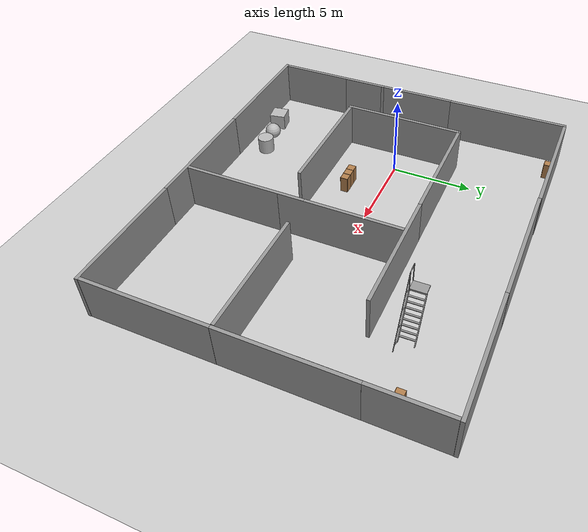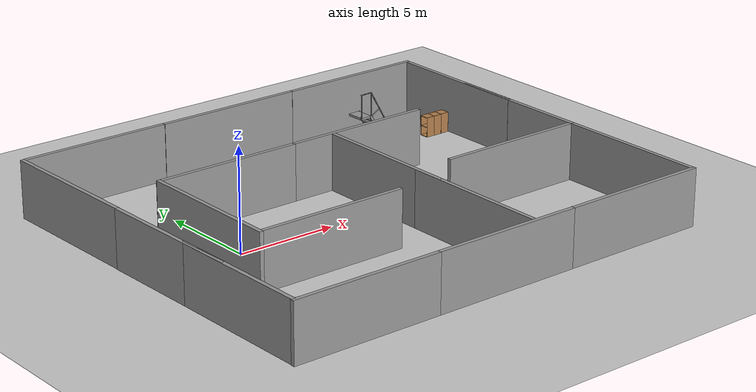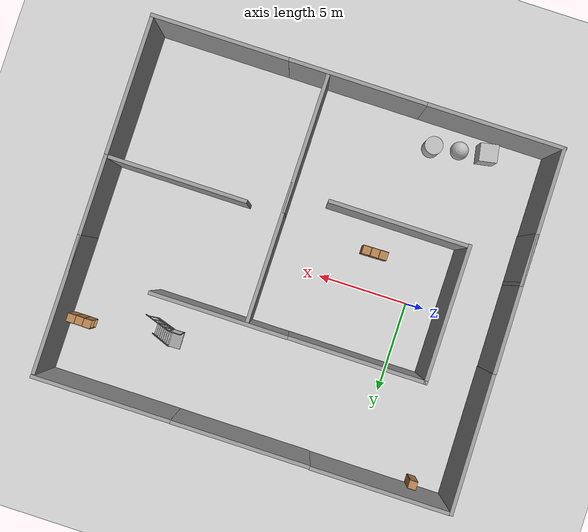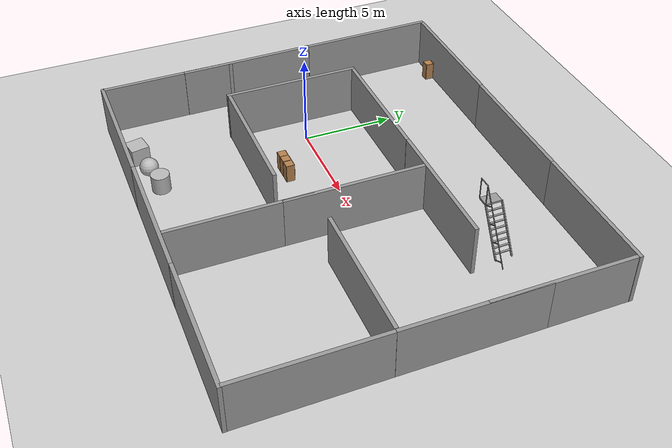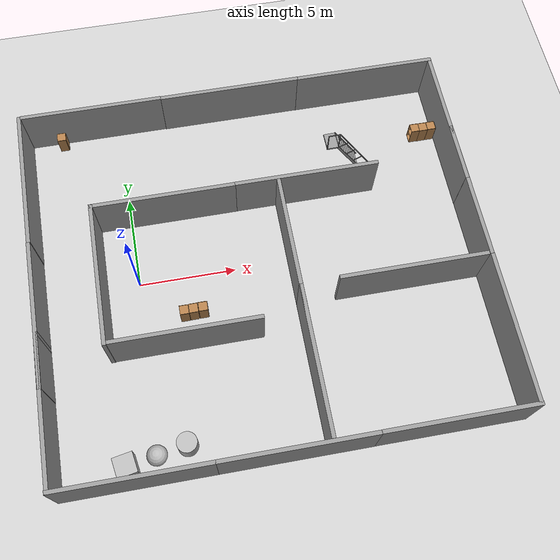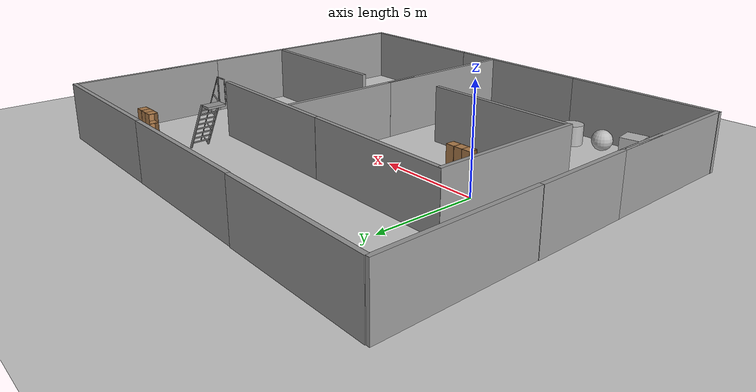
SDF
<sdf version="1.7">
 <world name="default">
  <light name="sun" type="directional">
   <pose>0 0 10 0 -0 0</pose>
   <diffuse>0.8 0.8 0.8 1</diffuse>
   <specular>0.2 0.2 0.2 1</specular>
   <attenuation>
    <range>1000</range>
    <constant>0.9</constant>
    <linear>0.01</linear>
    <quadratic>0.001</quadratic>
   </attenuation>
   <direction>-0.5 0.1 -0.9</direction>
   <spot><inner_angle>0</inner_angle><outer_angle>0</outer_angle><falloff>0</falloff></spot>
  </light>
  <model name="ground_plane">
   <static>1</static>
   <link name="link">
    <collision name="collision">
     <geometry><plane><normal>0 0 1</normal><size>100 100</size></plane></geometry>
     <surface><friction><ode><mu>100</mu><mu2>50</mu2></ode></friction></surface>
    </collision>
    <visual name="visual">
     <cast_shadows>0</cast_shadows>
     <geometry><plane><normal>0 0 1</normal><size>100 100</size></plane></geometry>
     <material>
      <script><uri>file://media/materials/scripts/gazebo.material</uri><name>Gazebo/Grey</name></script>
     </material>
    </visual>
   </link>
  </model>
  <gravity>0 0 -9.8</gravity>
  <magnetic_field>6e-06 2.3e-05 -4.2e-05</magnetic_field>
  <atmosphere type="adiabatic"/>
  <physics type="ode">
   <max_step_size>0.001</max_step_size>
   <real_time_factor>1</real_time_factor>
   <real_time_update_rate>1000</real_time_update_rate>
  </physics>
  <scene><ambient>0.4 0.4 0.4 1</ambient><background>0.7 0.7 0.7 1</background><shadows>1</shadows></scene>
  <spherical_coordinates>
   <surface_model>EARTH_WGS84</surface_model>
   <latitude_deg>0</latitude_deg>
   <longitude_deg>0</longitude_deg>
   <elevation>0</elevation>
   <heading_deg>0</heading_deg>
  </spherical_coordinates>
  <model name="grey_wall">
   <static>1</static>
   <link name="link">
    <pose>0 0 1.4 0 -0 0</pose>
    <collision name="collision"><geometry><box><size>7.5 0.2 2.8</size></box></geometry></collision>
    <visual name="visual">
     <cast_shadows>0</cast_shadows>
     <geometry><box><size>7.5 0.2 2.8</size></box></geometry>
     <material>
      <script>
       <uri>model://grey_wall/materials/scripts</uri>
       <uri>model://grey_wall/materials/textures</uri>
       <name>vrc/grey_wall</name>
      </script>
     </material>
    </visual>
   </link>
   <pose>6.2728 -10.0751 0 0 -0 0</pose>
  </model>
  <model name="grey_wall_clone">
   <static>1</static>
   <link name="link">
    <pose>0 0 1.4 0 -0 0</pose>
    <collision name="collision"><geometry><box><size>7.5 0.2 2.8</size></box></geometry></collision>
    <visual name="visual">
     <cast_shadows>0</cast_shadows>
     <geometry><box><size>7.5 0.2 2.8</size></box></geometry>
     <material>
      <script>
       <uri>model://grey_wall/materials/scripts</uri>
       <uri>model://grey_wall/materials/textures</uri>
       <name>vrc/grey_wall</name>
      </script>
     </material>
    </visual>
   </link>
   <pose>-1.19798 -10.0759 0 0 -0 0</pose>
  </model>
  <model name="grey_wall_clone_clone">
   <static>1</static>
   <link name="link">
    <pose>0 0 1.4 0 -0 0</pose>
    <collision name="collision"><geometry><box><size>7.5 0.2 2.8</size></box></geometry></collision>
    <visual name="visual">
     <cast_shadows>0</cast_shadows>
     <geometry><box><size>7.5 0.2 2.8</size></box></geometry>
     <material>
      <script>
       <uri>model://grey_wall/materials/scripts</uri>
       <uri>model://grey_wall/materials/textures</uri>
       <name>vrc/grey_wall</name>
      </script>
     </material>
    </visual>
   </link>
   <pose>13.7561 -10.0711 0 0 -0 0</pose>
  </model>
  <model name="grey_wall_clone_clone_clone_0">
   <static>1</static>
   <link name="link">
    <pose>0 0 1.4 0 -0 0</pose>
    <collision name="collision"><geometry><box><size>7.5 0.2 2.8</size></box></geometry></collision>
    <visual name="visual">
     <cast_shadows>0</cast_shadows>
     <geometry><box><size>7.5 0.2 2.8</size></box></geometry>
     <material>
      <script>
       <uri>model://grey_wall/materials/scripts</uri>
       <uri>model://grey_wall/materials/textures</uri>
       <name>vrc/grey_wall</name>
      </script>
     </material>
    </visual>
   </link>
   <pose>6.30407 9.42417 0 0 -0 0</pose>
  </model>
  <model name="grey_wall_clone_clone_clone_1">
   <static>1</static>
   <link name="link">
    <pose>0 0 1.4 0 -0 0</pose>
    <collision name="collision"><geometry><box><size>7.5 0.2 2.8</size></box></geometry></collision>
    <visual name="visual">
     <cast_shadows>0</cast_shadows>
     <geometry><box><size>7.5 0.2 2.8</size></box></geometry>
     <material>
      <script>
       <uri>model://grey_wall/materials/scripts</uri>
       <uri>model://grey_wall/materials/textures</uri>
       <name>vrc/grey_wall</name>
      </script>
     </material>
    </visual>
   </link>
   <pose>13.7729 9.41726 0 0 -0 0</pose>
  </model>
  <model name="grey_wall_clone_clone_clone_2">
   <static>1</static>
   <link name="link">
    <pose>0 0 1.4 0 -0 0</pose>
    <collision name="collision"><geometry><box><size>7.5 0.2 2.8</size></box></geometry></collision>
    <visual name="visual">
     <cast_shadows>0</cast_shadows>
     <geometry><box><size>7.5 0.2 2.8</size></box></geometry>
     <material>
      <script>
       <uri>model://grey_wall/materials/scripts</uri>
       <uri>model://grey_wall/materials/textures</uri>
       <name>vrc/grey_wall</name>
      </script>
     </material>
    </visual>
   </link>
   <pose>17.4003 -6.2743 0 0 0 -1.57221</pose>
  </model>
  <model name="grey_wall_clone_clone_clone_2_clone">
   <static>1</static>
   <link name="link">
    <pose>0 0 1.4 0 -0 0</pose>
    <collision name="collision"><geometry><box><size>7.5 0.2 2.8</size></box></geometry></collision>
    <visual name="visual">
     <cast_shadows>0</cast_shadows>
     <geometry><box><size>7.5 0.2 2.8</size></box></geometry>
     <material>
      <script>
       <uri>model://grey_wall/materials/scripts</uri>
       <uri>model://grey_wall/materials/textures</uri>
       <name>vrc/grey_wall</name>
      </script>
     </material>
    </visual>
   </link>
   <pose>17.4082 1.23217 0 0 0 -1.57221</pose>
  </model>
  <model name="grey_wall_clone_clone_clone_2_clone_clone_0">
   <static>1</static>
   <link name="link">
    <pose>0 0 1.4 0 -0 0</pose>
    <collision name="collision"><geometry><box><size>7.5 0.2 2.8</size></box></geometry></collision>
    <visual name="visual">
     <cast_shadows>0</cast_shadows>
     <geometry><box><size>7.5 0.2 2.8</size></box></geometry>
     <material>
      <script>
       <uri>model://grey_wall/materials/scripts</uri>
       <uri>model://grey_wall/materials/textures</uri>
       <name>vrc/grey_wall</name>
      </script>
     </material>
    </visual>
   </link>
   <pose>17.4091 5.55321 0 0 0 -1.57221</pose>
  </model>
  <model name="grey_wall_clone_clone_clone_2_clone_clone_1">
   <static>1</static>
   <link name="link">
    <pose>0 0 1.4 0 -0 0</pose>
    <collision name="collision"><geometry><box><size>7.5 0.2 2.8</size></box></geometry></collision>
    <visual name="visual">
     <cast_shadows>0</cast_shadows>
     <geometry><box><size>7.5 0.2 2.8</size></box></geometry>
     <material>
      <script>
       <uri>model://grey_wall/materials/scripts</uri>
       <uri>model://grey_wall/materials/textures</uri>
       <name>vrc/grey_wall</name>
      </script>
     </material>
    </visual>
   </link>
   <pose>-4.84946 -6.41877 0 0 0 -1.56398</pose>
  </model>
  <model name="grey_wall_clone_clone_clone_0_clone">
   <static>1</static>
   <link name="link">
    <pose>0 0 1.4 0 -0 0</pose>
    <collision name="collision"><geometry><box><size>7.5 0.2 2.8</size></box></geometry></collision>
    <visual name="visual">
     <cast_shadows>0</cast_shadows>
     <geometry><box><size>7.5 0.2 2.8</size></box></geometry>
     <material>
      <script>
       <uri>model://grey_wall/materials/scripts</uri>
       <uri>model://grey_wall/materials/textures</uri>
       <name>vrc/grey_wall</name>
      </script>
     </material>
    </visual>
   </link>
   <pose>-1.1963 9.44838 0 0 -0 0</pose>
  </model>
  <model name="grey_wall_clone_clone_clone_0_clone_0">
   <static>1</static>
   <link name="link">
    <pose>0 0 1.4 0 -0 0</pose>
    <collision name="collision"><geometry><box><size>7.5 0.2 2.8</size></box></geometry></collision>
    <visual name="visual">
     <cast_shadows>0</cast_shadows>
     <geometry><box><size>7.5 0.2 2.8</size></box></geometry>
     <material>
      <script>
       <uri>model://grey_wall/materials/scripts</uri>
       <uri>model://grey_wall/materials/textures</uri>
       <name>vrc/grey_wall</name>
      </script>
     </material>
    </visual>
   </link>
   <pose>1.90496 3.50944 0 0 -0 0</pose>
  </model>
  <model name="grey_wall_clone_clone_clone_1_clone">
   <static>1</static>
   <link name="link">
    <pose>0 0 1.4 0 -0 0</pose>
    <collision name="collision"><geometry><box><size>7.5 0.2 2.8</size></box></geometry></collision>
    <visual name="visual">
     <cast_shadows>0</cast_shadows>
     <geometry><box><size>7.5 0.2 2.8</size></box></geometry>
     <material>
      <script>
       <uri>model://grey_wall/materials/scripts</uri>
       <uri>model://grey_wall/materials/textures</uri>
       <name>vrc/grey_wall</name>
      </script>
     </material>
    </visual>
   </link>
   <pose>13.5345 -2.44991 0 0 -0 0</pose>
  </model>
  <model name="grey_wall_clone_clone_clone_2_clone_clone_2_clone">
   <static>1</static>
   <link name="link">
    <pose>0 0 1.4 0 -0 0</pose>
    <collision name="collision"><geometry><box><size>7.5 0.2 2.8</size></box></geometry></collision>
    <visual name="visual">
     <cast_shadows>0</cast_shadows>
     <geometry><box><size>7.5 0.2 2.8</size></box></geometry>
     <material>
      <script>
       <uri>model://grey_wall/materials/scripts</uri>
       <uri>model://grey_wall/materials/textures</uri>
       <name>vrc/grey_wall</name>
      </script>
     </material>
    </visual>
   </link>
   <pose>7.86868 -0.336203 0 0 0 -1.57221</pose>
  </model>
  <model name="grey_wall_clone_clone_clone_2_clone_clone_2_clone_clone_clone_0">
   <static>1</static>
   <link name="link">
    <pose>0 0 1.4 0 -0 0</pose>
    <collision name="collision"><geometry><box><size>7.5 0.2 2.8</size></box></geometry></collision>
    <visual name="visual">
     <cast_shadows>0</cast_shadows>
     <geometry><box><size>7.5 0.2 2.8</size></box></geometry>
     <material>
      <script>
       <uri>model://grey_wall/materials/scripts</uri>
       <uri>model://grey_wall/materials/textures</uri>
       <name>vrc/grey_wall</name>
      </script>
     </material>
    </visual>
   </link>
   <pose>7.85938 -6.22052 0 0 0 -1.57221</pose>
  </model>
  <model name="grey_wall_clone_clone_clone_2_clone_clone_2_clone_clone_0">
   <static>1</static>
   <link name="link">
    <pose>0 0 1.4 0 -0 0</pose>
    <collision name="collision"><geometry><box><size>7.5 0.2 2.8</size></box></geometry></collision>
    <visual name="visual">
     <cast_shadows>0</cast_shadows>
     <geometry><box><size>7.5 0.2 2.8</size></box></geometry>
     <material>
      <script>
       <uri>model://grey_wall/materials/scripts</uri>
       <uri>model://grey_wall/materials/textures</uri>
       <name>vrc/grey_wall</name>
      </script>
     </material>
    </visual>
   </link>
   <pose>-1.7515 -0.157354 0 0 0 -1.57221</pose>
  </model>
  <model name="grey_wall_clone_0_clone">
   <static>1</static>
   <link name="link">
    <pose>0 0 1.4 0 -0 0</pose>
    <collision name="collision"><geometry><box><size>7.5 0.2 2.8</size></box></geometry></collision>
    <visual name="visual">
     <cast_shadows>0</cast_shadows>
     <geometry><box><size>7.5 0.2 2.8</size></box></geometry>
     <material>
      <script>
       <uri>model://grey_wall/materials/scripts</uri>
       <uri>model://grey_wall/materials/textures</uri>
       <name>vrc/grey_wall</name>
      </script>
     </material>
    </visual>
   </link>
   <pose>2.08917 -3.78651 0 0 -0 0</pose>
  </model>
  <model name="grey_wall_clone_clone_clone_2_clone_clone_1_clone">
   <static>1</static>
   <link name="link">
    <pose>0 0 1.4 0 -0 0</pose>
    <collision name="collision"><geometry><box><size>7.5 0.2 2.8</size></box></geometry></collision>
    <visual name="visual">
     <cast_shadows>0</cast_shadows>
     <geometry><box><size>7.5 0.2 2.8</size></box></geometry>
     <material>
      <script>
       <uri>model://grey_wall/materials/scripts</uri>
       <uri>model://grey_wall/materials/textures</uri>
       <name>vrc/grey_wall</name>
      </script>
     </material>
    </visual>
   </link>
   <pose>-4.88901 -1.72271 0 0 0 -1.55743</pose>
  </model>
  <model name="grey_wall_clone_clone_clone_2_clone_clone_1_clone_clone">
   <static>1</static>
   <link name="link">
    <pose>0 0 1.4 0 -0 0</pose>
    <collision name="collision"><geometry><box><size>7.5 0.2 2.8</size></box></geometry></collision>
    <visual name="visual">
     <cast_shadows>0</cast_shadows>
     <geometry><box><size>7.5 0.2 2.8</size></box></geometry>
     <material>
      <script>
       <uri>model://grey_wall/materials/scripts</uri>
       <uri>model://grey_wall/materials/textures</uri>
       <name>vrc/grey_wall</name>
      </script>
     </material>
    </visual>
   </link>
   <pose>-4.96975 5.76738 0 0 0 -1.5576</pose>
  </model>
  <model name="grey_wall_clone_clone_clone_0_clone_0_clone">
   <static>1</static>
   <link name="link">
    <pose>0 0 1.4 0 -0 0</pose>
    <collision name="collision"><geometry><box><size>7.5 0.2 2.8</size></box></geometry></collision>
    <visual name="visual">
     <cast_shadows>0</cast_shadows>
     <geometry><box><size>7.5 0.2 2.8</size></box></geometry>
     <material>
      <script>
       <uri>model://grey_wall/materials/scripts</uri>
       <uri>model://grey_wall/materials/textures</uri>
       <name>vrc/grey_wall</name>
      </script>
     </material>
    </visual>
   </link>
   <pose>9.37636 3.51744 0 0 -0 0</pose>
  </model>
  <model name="cabinet">
   <static>1</static>
   <link name="cabinet_bottom_plate">
    <inertial>
     <pose>0 0 -1 0 -0 0</pose>
     <inertia><ixx>2.05</ixx><ixy>0</ixy><ixz>0</ixz><iyy>2.05</iyy><iyz>0</iyz><izz>2.05</izz></inertia>
     <mass>25</mass>
    </inertial>
    <collision name="cabinet_bottom_plate_geom">
     <pose>0 0 0.01 0 -0 0</pose>
     <geometry><box><size>0.45 0.45 0.02</size></box></geometry>
    </collision>
    <visual name="cabinet_bottom_plate_geom_visual">
     <pose>0 0 0.01 0 -0 0</pose>
     <geometry><box><size>0.45 0.45 0.02</size></box></geometry>
     <material>
      <script><uri>file://media/materials/scripts/gazebo.material</uri><name>Gazebo/Wood</name></script>
     </material>
    </visual>
    <collision name="cabinet_bottom_plate_geom_cabinet_back_plate">
     <pose>0.235 0 0.51 0 -0 0</pose>
     <geometry><box><size>0.02 0.45 1.02</size></box></geometry>
    </collision>
    <visual name="cabinet_bottom_plate_geom_cabinet_back_plate_visual">
     <pose>0.235 0 0.51 0 -0 0</pose>
     <geometry><box><size>0.02 0.45 1.02</size></box></geometry>
     <material>
      <script><uri>file://media/materials/scripts/gazebo.material</uri><name>Gazebo/Wood</name></script>
     </material>
    </visual>
    <collision name="cabinet_bottom_plate_geom_cabinet_left_plate">
     <pose>0 0.235 0.51 0 -0 0</pose>
     <geometry><box><size>0.45 0.02 1.02</size></box></geometry>
    </collision>
    <visual name="cabinet_bottom_plate_geom_cabinet_left_plate_visual">
     <pose>0 0.235 0.51 0 -0 0</pose>
     <geometry><box><size>0.45 0.02 1.02</size></box></geometry>
     <material>
      <script><uri>file://media/materials/scripts/gazebo.material</uri><name>Gazebo/Wood</name></script>
     </material>
    </visual>
    <collision name="cabinet_bottom_plate_geom_cabinet_middle_plate">
     <pose>0 0 0.51 0 -0 0</pose>
     <geometry><box><size>0.45 0.45 0.02</size></box></geometry>
    </collision>
    <visual name="cabinet_bottom_plate_geom_cabinet_middle_plate_visual">
     <pose>0 0 0.51 0 -0 0</pose>
     <geometry><box><size>0.45 0.45 0.02</size></box></geometry>
     <material>
      <script><uri>file://media/materials/scripts/gazebo.material</uri><name>Gazebo/Wood</name></script>
     </material>
    </visual>
    <collision name="cabinet_bottom_plate_geom_cabinet_right_plate">
     <pose>0 -0.235 0.51 0 -0 0</pose>
     <geometry><box><size>0.45 0.02 1.02</size></box></geometry>
    </collision>
    <visual name="cabinet_bottom_plate_geom_cabinet_right_plate_visual">
     <pose>0 -0.235 0.51 0 -0 0</pose>
     <geometry><box><size>0.45 0.02 1.02</size></box></geometry>
     <material>
      <script><uri>file://media/materials/scripts/gazebo.material</uri><name>Gazebo/Wood</name></script>
     </material>
    </visual>
    <collision name="cabinet_bottom_plate_geom_cabinet_top_plate">
     <pose>0 0 1.01 0 -0 0</pose>
     <geometry><box><size>0.45 0.45 0.02</size></box></geometry>
    </collision>
    <visual name="cabinet_bottom_plate_geom_cabinet_top_plate_visual">
     <pose>0 0 1.01 0 -0 0</pose>
     <geometry><box><size>0.45 0.45 0.02</size></box></geometry>
     <material>
      <script><uri>file://media/materials/scripts/gazebo.material</uri><name>Gazebo/Wood</name></script>
     </material>
    </visual>
   </link>
   <pose>3.0379 -2.10061 0 0 -0 0</pose>
  </model>
  <model name="cabinet_0">
   <static>1</static>
   <link name="cabinet_bottom_plate">
    <inertial>
     <pose>0 0 -1 0 -0 0</pose>
     <inertia><ixx>2.05</ixx><ixy>0</ixy><ixz>0</ixz><iyy>2.05</iyy><iyz>0</iyz><izz>2.05</izz></inertia>
     <mass>25</mass>
    </inertial>
    <collision name="cabinet_bottom_plate_geom">
     <pose>0 0 0.01 0 -0 0</pose>
     <geometry><box><size>0.45 0.45 0.02</size></box></geometry>
    </collision>
    <visual name="cabinet_bottom_plate_geom_visual">
     <pose>0 0 0.01 0 -0 0</pose>
     <geometry><box><size>0.45 0.45 0.02</size></box></geometry>
     <material>
      <script><uri>file://media/materials/scripts/gazebo.material</uri><name>Gazebo/Wood</name></script>
     </material>
    </visual>
    <collision name="cabinet_bottom_plate_geom_cabinet_back_plate">
     <pose>0.235 0 0.51 0 -0 0</pose>
     <geometry><box><size>0.02 0.45 1.02</size></box></geometry>
    </collision>
    <visual name="cabinet_bottom_plate_geom_cabinet_back_plate_visual">
     <pose>0.235 0 0.51 0 -0 0</pose>
     <geometry><box><size>0.02 0.45 1.02</size></box></geometry>
     <material>
      <script><uri>file://media/materials/scripts/gazebo.material</uri><name>Gazebo/Wood</name></script>
     </material>
    </visual>
    <collision name="cabinet_bottom_plate_geom_cabinet_left_plate">
     <pose>0 0.235 0.51 0 -0 0</pose>
     <geometry><box><size>0.45 0.02 1.02</size></box></geometry>
    </collision>
    <visual name="cabinet_bottom_plate_geom_cabinet_left_plate_visual">
     <pose>0 0.235 0.51 0 -0 0</pose>
     <geometry><box><size>0.45 0.02 1.02</size></box></geometry>
     <material>
      <script><uri>file://media/materials/scripts/gazebo.material</uri><name>Gazebo/Wood</name></script>
     </material>
    </visual>
    <collision name="cabinet_bottom_plate_geom_cabinet_middle_plate">
     <pose>0 0 0.51 0 -0 0</pose>
     <geometry><box><size>0.45 0.45 0.02</size></box></geometry>
    </collision>
    <visual name="cabinet_bottom_plate_geom_cabinet_middle_plate_visual">
     <pose>0 0 0.51 0 -0 0</pose>
     <geometry><box><size>0.45 0.45 0.02</size></box></geometry>
     <material>
      <script><uri>file://media/materials/scripts/gazebo.material</uri><name>Gazebo/Wood</name></script>
     </material>
    </visual>
    <collision name="cabinet_bottom_plate_geom_cabinet_right_plate">
     <pose>0 -0.235 0.51 0 -0 0</pose>
     <geometry><box><size>0.45 0.02 1.02</size></box></geometry>
    </collision>
    <visual name="cabinet_bottom_plate_geom_cabinet_right_plate_visual">
     <pose>0 -0.235 0.51 0 -0 0</pose>
     <geometry><box><size>0.45 0.02 1.02</size></box></geometry>
     <material>
      <script><uri>file://media/materials/scripts/gazebo.material</uri><name>Gazebo/Wood</name></script>
     </material>
    </visual>
    <collision name="cabinet_bottom_plate_geom_cabinet_top_plate">
     <pose>0 0 1.01 0 -0 0</pose>
     <geometry><box><size>0.45 0.45 0.02</size></box></geometry>
    </collision>
    <visual name="cabinet_bottom_plate_geom_cabinet_top_plate_visual">
     <pose>0 0 1.01 0 -0 0</pose>
     <geometry><box><size>0.45 0.45 0.02</size></box></geometry>
     <material>
      <script><uri>file://media/materials/scripts/gazebo.material</uri><name>Gazebo/Wood</name></script>
     </material>
    </visual>
   </link>
   <pose>2.55586 -2.1092 0 0 -0 0</pose>
  </model>
  <model name="ladder_60deg_1rails">
   <static>1</static>
   <link name="step0">
    <pose>0 0.15396 0.266667 0 -0 0</pose>
    <inertial>
     <mass>9.75482</mass>
     <inertia>
      <ixx>0.00957124</ixx>
      <iyy>0.65963</iyy>
      <izz>0.666842</izz>
      <ixy>0</ixy>
      <ixz>0</ixz>
      <iyz>0</iyz>
     </inertia>
    </inertial>
    <collision name="collision"><geometry><box><size>0.9 0.1016 0.0381</size></box></geometry></collision>
    <visual name="visual">
     <geometry><box><size>0.9 0.1016 0.0381</size></box></geometry>
     <material>
      <script><uri>file://media/materials/scripts/gazebo.material</uri><name>Gazebo/Grey</name></script>
     </material>
    </visual>
   </link>
   <link name="step1">
    <pose>0 0.30792 0.533333 0 -0 0</pose>
    <inertial>
     <mass>9.75482</mass>
     <inertia>
      <ixx>0.00957124</ixx>
      <iyy>0.65963</iyy>
      <izz>0.666842</izz>
      <ixy>0</ixy>
      <ixz>0</ixz>
      <iyz>0</iyz>
     </inertia>
    </inertial>
    <collision name="collision"><geometry><box><size>0.9 0.1016 0.0381</size></box></geometry></collision>
    <visual name="visual">
     <geometry><box><size>0.9 0.1016 0.0381</size></box></geometry>
     <material>
      <script><uri>file://media/materials/scripts/gazebo.material</uri><name>Gazebo/Grey</name></script>
     </material>
    </visual>
   </link>
   <link name="step2">
    <pose>0 0.46188 0.8 0 -0 0</pose>
    <inertial>
     <mass>9.75482</mass>
     <inertia>
      <ixx>0.00957124</ixx>
      <iyy>0.65963</iyy>
      <izz>0.666842</izz>
      <ixy>0</ixy>
      <ixz>0</ixz>
      <iyz>0</iyz>
     </inertia>
    </inertial>
    <collision name="collision"><geometry><box><size>0.9 0.1016 0.0381</size></box></geometry></collision>
    <visual name="visual">
     <geometry><box><size>0.9 0.1016 0.0381</size></box></geometry>
     <material>
      <script><uri>file://media/materials/scripts/gazebo.material</uri><name>Gazebo/Grey</name></script>
     </material>
    </visual>
   </link>
   <link name="step3">
    <pose>0 0.61584 1.06667 0 -0 0</pose>
    <inertial>
     <mass>9.75482</mass>
     <inertia>
      <ixx>0.00957124</ixx>
      <iyy>0.65963</iyy>
      <izz>0.666842</izz>
      <ixy>0</ixy>
      <ixz>0</ixz>
      <iyz>0</iyz>
     </inertia>
    </inertial>
    <collision name="collision"><geometry><box><size>0.9 0.1016 0.0381</size></box></geometry></collision>
    <visual name="visual">
     <geometry><box><size>0.9 0.1016 0.0381</size></box></geometry>
     <material>
      <script><uri>file://media/materials/scripts/gazebo.material</uri><name>Gazebo/Grey</name></script>
     </material>
    </visual>
   </link>
   <link name="step4">
    <pose>0 0.7698 1.33333 0 -0 0</pose>
    <inertial>
     <mass>9.75482</mass>
     <inertia>
      <ixx>0.00957124</ixx>
      <iyy>0.65963</iyy>
      <izz>0.666842</izz>
      <ixy>0</ixy>
      <ixz>0</ixz>
      <iyz>0</iyz>
     </inertia>
    </inertial>
    <collision name="collision"><geometry><box><size>0.9 0.1016 0.0381</size></box></geometry></collision>
    <visual name="visual">
     <geometry><box><size>0.9 0.1016 0.0381</size></box></geometry>
     <material>
      <script><uri>file://media/materials/scripts/gazebo.material</uri><name>Gazebo/Grey</name></script>
     </material>
    </visual>
   </link>
   <link name="step5">
    <pose>0 0.92376 1.6 0 -0 0</pose>
    <inertial>
     <mass>9.75482</mass>
     <inertia>
      <ixx>0.00957124</ixx>
      <iyy>0.65963</iyy>
      <izz>0.666842</izz>
      <ixy>0</ixy>
      <ixz>0</ixz>
      <iyz>0</iyz>
     </inertia>
    </inertial>
    <collision name="collision"><geometry><box><size>0.9 0.1016 0.0381</size></box></geometry></collision>
    <visual name="visual">
     <geometry><box><size>0.9 0.1016 0.0381</size></box></geometry>
     <material>
      <script><uri>file://media/materials/scripts/gazebo.material</uri><name>Gazebo/Grey</name></script>
     </material>
    </visual>
   </link>
   <link name="step6">
    <pose>0 1.07772 1.86667 0 -0 0</pose>
    <inertial>
     <mass>9.75482</mass>
     <inertia>
      <ixx>0.00957124</ixx>
      <iyy>0.65963</iyy>
      <izz>0.666842</izz>
      <ixy>0</ixy>
      <ixz>0</ixz>
      <iyz>0</iyz>
     </inertia>
    </inertial>
    <collision name="collision"><geometry><box><size>0.9 0.1016 0.0381</size></box></geometry></collision>
    <visual name="visual">
     <geometry><box><size>0.9 0.1016 0.0381</size></box></geometry>
     <material>
      <script><uri>file://media/materials/scripts/gazebo.material</uri><name>Gazebo/Grey</name></script>
     </material>
    </visual>
   </link>
   <link name="step7">
    <pose>0 1.23168 2.13333 0 -0 0</pose>
    <inertial>
     <mass>9.75482</mass>
     <inertia>
      <ixx>0.00957124</ixx>
      <iyy>0.65963</iyy>
      <izz>0.666842</izz>
      <ixy>0</ixy>
      <ixz>0</ixz>
      <iyz>0</iyz>
     </inertia>
    </inertial>
    <collision name="collision"><geometry><box><size>0.9 0.1016 0.0381</size></box></geometry></collision>
    <visual name="visual">
     <geometry><box><size>0.9 0.1016 0.0381</size></box></geometry>
     <material>
      <script><uri>file://media/materials/scripts/gazebo.material</uri><name>Gazebo/Grey</name></script>
     </material>
    </visual>
   </link>
   <link name="landing">
    <pose>0 1.68564 2.4 0 -0 0</pose>
    <inertial>
     <mass>57.6072</mass>
     <inertia><ixx>1.73518</ixx><iyy>3.89545</iyy><izz>5.6167</izz><ixy>0</ixy><ixz>0</ixz><iyz>0</iyz></inertia>
    </inertial>
    <collision name="collision"><geometry><box><size>0.9 0.6 0.1016</size></box></geometry></collision>
    <visual name="visual">
     <geometry><box><size>0.9 0.6 0.1016</size></box></geometry>
     <material>
      <script><uri>file://media/materials/scripts/gazebo.material</uri><name>Gazebo/Grey</name></script>
     </material>
    </visual>
   </link>
   <link name="left_side_wall">
    <pose>-0.45 0.69282 1.2 1.0472 -0 0</pose>
    <collision name="collision"><geometry><box><size>0.0508 2.85128 0.13</size></box></geometry></collision>
    <visual name="visual">
     <geometry><box><size>0.0508 2.85128 0.13</size></box></geometry>
     <material>
      <script><uri>file://media/materials/scripts/gazebo.material</uri><name>Gazebo/Grey</name></script>
     </material>
    </visual>
   </link>
   <link name="right_side_wall">
    <pose>0.45 0.69282 1.2 1.0472 -0 0</pose>
    <collision name="collision"><geometry><box><size>0.0508 2.85128 0.13</size></box></geometry></collision>
    <visual name="visual">
     <geometry><box><size>0.0508 2.85128 0.13</size></box></geometry>
     <material>
      <script><uri>file://media/materials/scripts/gazebo.material</uri><name>Gazebo/Grey</name></script>
     </material>
    </visual>
   </link>
   <link name="left_railing_long">
    <pose>-0.45 0.34282 1.80622 -0.523599 0 0</pose>
    <collision name="collision">
     <geometry><cylinder><radius>0.02413</radius><length>4.17128</length></cylinder></geometry>
    </collision>
    <visual name="visual">
     <geometry><cylinder><radius>0.02413</radius><length>4.17128</length></cylinder></geometry>
     <material>
      <script><uri>file://media/materials/scripts/gazebo.material</uri><name>Gazebo/Grey</name></script>
     </material>
    </visual>
   </link>
   <link name="left_railing_upright0">
    <pose>-0.45 -0.274963 0.15875 1.0472 -0 0</pose>
    <collision name="collision">
     <geometry><cylinder><radius>0.02413</radius><length>0.541218</length></cylinder></geometry>
    </collision>
    <visual name="visual">
     <geometry><cylinder><radius>0.02413</radius><length>0.541218</length></cylinder></geometry>
     <material>
      <script><uri>file://media/materials/scripts/gazebo.material</uri><name>Gazebo/Grey</name></script>
     </material>
    </visual>
   </link>
   <link name="left_railing_upright1">
    <pose>-0.45 0.186917 0.95875 1.0472 -0 0</pose>
    <collision name="collision">
     <geometry><cylinder><radius>0.02413</radius><length>0.541218</length></cylinder></geometry>
    </collision>
    <visual name="visual">
     <geometry><cylinder><radius>0.02413</radius><length>0.541218</length></cylinder></geometry>
     <material>
      <script><uri>file://media/materials/scripts/gazebo.material</uri><name>Gazebo/Grey</name></script>
     </material>
    </visual>
   </link>
   <link name="left_railing_upright2">
    <pose>-0.45 0.648797 1.75875 1.0472 -0 0</pose>
    <collision name="collision">
     <geometry><cylinder><radius>0.02413</radius><length>0.541218</length></cylinder></geometry>
    </collision>
    <visual name="visual">
     <geometry><cylinder><radius>0.02413</radius><length>0.541218</length></cylinder></geometry>
     <material>
      <script><uri>file://media/materials/scripts/gazebo.material</uri><name>Gazebo/Grey</name></script>
     </material>
    </visual>
   </link>
   <link name="left_railing_upright3">
    <pose>-0.45 1.11068 2.55875 1.0472 -0 0</pose>
    <collision name="collision">
     <geometry><cylinder><radius>0.02413</radius><length>0.541218</length></cylinder></geometry>
    </collision>
    <visual name="visual">
     <geometry><cylinder><radius>0.02413</radius><length>0.541218</length></cylinder></geometry>
     <material>
      <script><uri>file://media/materials/scripts/gazebo.material</uri><name>Gazebo/Grey</name></script>
     </material>
    </visual>
   </link>
   <link name="left_railing_landing_top">
    <pose>-0.45 1.68564 3.61244 1.5708 -0 0</pose>
    <collision name="collision">
     <geometry><cylinder><radius>0.02413</radius><length>0.64826</length></cylinder></geometry>
    </collision>
    <visual name="visual">
     <geometry><cylinder><radius>0.02413</radius><length>0.64826</length></cylinder></geometry>
     <material>
      <script><uri>file://media/materials/scripts/gazebo.material</uri><name>Gazebo/Grey</name></script>
     </material>
    </visual>
   </link>
   <link name="left_railing_landing_upright_0">
    <pose>-0.45 1.38564 3.00622 0 -0 0</pose>
    <collision name="collision">
     <geometry><cylinder><radius>0.02413</radius><length>1.21244</length></cylinder></geometry>
    </collision>
    <visual name="visual">
     <geometry><cylinder><radius>0.02413</radius><length>1.21244</length></cylinder></geometry>
     <material>
      <script><uri>file://media/materials/scripts/gazebo.material</uri><name>Gazebo/Grey</name></script>
     </material>
    </visual>
   </link>
   <link name="left_railing_landing_upright_1">
    <pose>-0.45 1.98564 3.00622 0 -0 0</pose>
    <collision name="collision">
     <geometry><cylinder><radius>0.02413</radius><length>1.21244</length></cylinder></geometry>
    </collision>
    <visual name="visual">
     <geometry><cylinder><radius>0.02413</radius><length>1.21244</length></cylinder></geometry>
     <material>
      <script><uri>file://media/materials/scripts/gazebo.material</uri><name>Gazebo/Grey</name></script>
     </material>
    </visual>
   </link>
   <pose>12.7534 5.42884 0 0 -0 1.58936</pose>
  </model>
  <model name="textured_shapes">
   <pose>-0.150578 -8.89138 0.5 0 -0 -1.39075</pose>
   <link name="box">
    <pose>0 -1.5 0 0 -0 0</pose>
    <collision name="collision"><geometry><box><size>1 1 1</size></box></geometry></collision>
    <visual name="visual">
     <geometry><box><size>1 1 1</size></box></geometry>
     <material>
      <script>
       <uri>model://textured_shapes/materials/scripts</uri>
       <uri>model://textured_shapes/materials/textures</uri>
       <name>TexturedShape/Squares</name>
      </script>
     </material>
    </visual>
    <inertial>
     <inertia><ixx>1</ixx><ixy>0</ixy><ixz>0</ixz><iyy>1</iyy><iyz>0</iyz><izz>1</izz></inertia>
     <mass>1</mass>
    </inertial>
   </link>
   <link name="sphere">
    <collision name="collision"><geometry><sphere><radius>0.5</radius></sphere></geometry></collision>
    <visual name="visual">
     <geometry><sphere><radius>0.5</radius></sphere></geometry>
     <material>
      <script>
       <uri>model://textured_shapes/materials/scripts</uri>
       <uri>model://textured_shapes/materials/textures</uri>
       <name>TexturedShape/Squares</name>
      </script>
     </material>
    </visual>
    <inertial>
     <inertia><ixx>1</ixx><ixy>0</ixy><ixz>0</ixz><iyy>1</iyy><iyz>0</iyz><izz>1</izz></inertia>
     <mass>1</mass>
    </inertial>
   </link>
   <link name="cylinder">
    <pose>0 1.5 0 0 -0 0</pose>
    <collision name="collision">
     <geometry><cylinder><radius>0.5</radius><length>1</length></cylinder></geometry>
    </collision>
    <visual name="visual">
     <geometry><cylinder><radius>0.5</radius><length>1</length></cylinder></geometry>
     <material>
      <script>
       <uri>model://textured_shapes/materials/scripts</uri>
       <uri>model://textured_shapes/materials/textures</uri>
       <name>TexturedShape/Squares</name>
      </script>
     </material>
    </visual>
    <inertial>
     <inertia><ixx>1</ixx><ixy>0</ixy><ixz>0</ixz><iyy>1</iyy><iyz>0</iyz><izz>1</izz></inertia>
     <mass>1</mass>
    </inertial>
   </link>
  </model>
  <model name="wood_block_10_2_1cm">
   <link name="link">
    <pose>0 0 0.005 0 -0 0</pose>
    <inertial>
     <mass>0.0125</mass>
     <inertia>
      <ixx>7.55208e-07</ixx>
      <ixy>0</ixy>
      <ixz>0</ixz>
      <iyy>1.05208e-05</iyy>
      <iyz>0</iyz>
      <izz>1.10677e-05</izz>
     </inertia>
    </inertial>
    <collision name="collision">
     <geometry><box><size>0.1 0.025 0.01</size></box></geometry>
     <surface>
      <contact>
       <poissons_ratio>0.347</poissons_ratio>
       <elastic_modulus>8.8e+09</elastic_modulus>
       <ode><kp>100000</kp><kd>1</kd><max_vel>1</max_vel><min_depth>0.001</min_depth></ode>
      </contact>
      <friction>
       <torsional>
        <coefficient>1</coefficient>
        <use_patch_radius>0</use_patch_radius>
        <surface_radius>0.05</surface_radius>
       </torsional>
      </friction>
     </surface>
    </collision>
    <visual name="visual">
     <geometry><box><size>0.1 0.025 0.01</size></box></geometry>
     <material>
      <script><uri>file://media/materials/scripts/gazebo.material</uri><name>Gazebo/Wood</name></script>
     </material>
    </visual>
   </link>
   <pose>2.82428 -2.18426 -0.00624 -0.000658 0.001101 -0.037115</pose>
  </model>
  <model name="cabinet_0_clone">
   <static>1</static>
   <link name="cabinet_bottom_plate">
    <inertial>
     <pose>0 0 -1 0 -0 0</pose>
     <inertia><ixx>2.05</ixx><ixy>0</ixy><ixz>0</ixz><iyy>2.05</iyy><iyz>0</iyz><izz>2.05</izz></inertia>
     <mass>25</mass>
    </inertial>
    <collision name="cabinet_bottom_plate_geom">
     <pose>0 0 0.01 0 -0 0</pose>
     <geometry><box><size>0.45 0.45 0.02</size></box></geometry>
    </collision>
    <visual name="cabinet_bottom_plate_geom_visual">
     <pose>0 0 0.01 0 -0 0</pose>
     <geometry><box><size>0.45 0.45 0.02</size></box></geometry>
     <material>
      <script><uri>file://media/materials/scripts/gazebo.material</uri><name>Gazebo/Wood</name></script>
     </material>
    </visual>
    <collision name="cabinet_bottom_plate_geom_cabinet_back_plate">
     <pose>0.235 0 0.51 0 -0 0</pose>
     <geometry><box><size>0.02 0.45 1.02</size></box></geometry>
    </collision>
    <visual name="cabinet_bottom_plate_geom_cabinet_back_plate_visual">
     <pose>0.235 0 0.51 0 -0 0</pose>
     <geometry><box><size>0.02 0.45 1.02</size></box></geometry>
     <material>
      <script><uri>file://media/materials/scripts/gazebo.material</uri><name>Gazebo/Wood</name></script>
     </material>
    </visual>
    <collision name="cabinet_bottom_plate_geom_cabinet_left_plate">
     <pose>0 0.235 0.51 0 -0 0</pose>
     <geometry><box><size>0.45 0.02 1.02</size></box></geometry>
    </collision>
    <visual name="cabinet_bottom_plate_geom_cabinet_left_plate_visual">
     <pose>0 0.235 0.51 0 -0 0</pose>
     <geometry><box><size>0.45 0.02 1.02</size></box></geometry>
     <material>
      <script><uri>file://media/materials/scripts/gazebo.material</uri><name>Gazebo/Wood</name></script>
     </material>
    </visual>
    <collision name="cabinet_bottom_plate_geom_cabinet_middle_plate">
     <pose>0 0 0.51 0 -0 0</pose>
     <geometry><box><size>0.45 0.45 0.02</size></box></geometry>
    </collision>
    <visual name="cabinet_bottom_plate_geom_cabinet_middle_plate_visual">
     <pose>0 0 0.51 0 -0 0</pose>
     <geometry><box><size>0.45 0.45 0.02</size></box></geometry>
     <material>
      <script><uri>file://media/materials/scripts/gazebo.material</uri><name>Gazebo/Wood</name></script>
     </material>
    </visual>
    <collision name="cabinet_bottom_plate_geom_cabinet_right_plate">
     <pose>0 -0.235 0.51 0 -0 0</pose>
     <geometry><box><size>0.45 0.02 1.02</size></box></geometry>
    </collision>
    <visual name="cabinet_bottom_plate_geom_cabinet_right_plate_visual">
     <pose>0 -0.235 0.51 0 -0 0</pose>
     <geometry><box><size>0.45 0.02 1.02</size></box></geometry>
     <material>
      <script><uri>file://media/materials/scripts/gazebo.material</uri><name>Gazebo/Wood</name></script>
     </material>
    </visual>
    <collision name="cabinet_bottom_plate_geom_cabinet_top_plate">
     <pose>0 0 1.01 0 -0 0</pose>
     <geometry><box><size>0.45 0.45 0.02</size></box></geometry>
    </collision>
    <visual name="cabinet_bottom_plate_geom_cabinet_top_plate_visual">
     <pose>0 0 1.01 0 -0 0</pose>
     <geometry><box><size>0.45 0.45 0.02</size></box></geometry>
     <material>
      <script><uri>file://media/materials/scripts/gazebo.material</uri><name>Gazebo/Wood</name></script>
     </material>
    </visual>
   </link>
   <pose>-3.18753 9.10772 0 0 -0 0</pose>
  </model>
  <model name="cabinet_0_clone_0">
   <static>1</static>
   <link name="cabinet_bottom_plate">
    <inertial>
     <pose>0 0 -1 0 -0 0</pose>
     <inertia><ixx>2.05</ixx><ixy>0</ixy><ixz>0</ixz><iyy>2.05</iyy><iyz>0</iyz><izz>2.05</izz></inertia>
     <mass>25</mass>
    </inertial>
    <collision name="cabinet_bottom_plate_geom">
     <pose>0 0 0.01 0 -0 0</pose>
     <geometry><box><size>0.45 0.45 0.02</size></box></geometry>
    </collision>
    <visual name="cabinet_bottom_plate_geom_visual">
     <pose>0 0 0.01 0 -0 0</pose>
     <geometry><box><size>0.45 0.45 0.02</size></box></geometry>
     <material>
      <script><uri>file://media/materials/scripts/gazebo.material</uri><name>Gazebo/Wood</name></script>
     </material>
    </visual>
    <collision name="cabinet_bottom_plate_geom_cabinet_back_plate">
     <pose>0.235 0 0.51 0 -0 0</pose>
     <geometry><box><size>0.02 0.45 1.02</size></box></geometry>
    </collision>
    <visual name="cabinet_bottom_plate_geom_cabinet_back_plate_visual">
     <pose>0.235 0 0.51 0 -0 0</pose>
     <geometry><box><size>0.02 0.45 1.02</size></box></geometry>
     <material>
      <script><uri>file://media/materials/scripts/gazebo.material</uri><name>Gazebo/Wood</name></script>
     </material>
    </visual>
    <collision name="cabinet_bottom_plate_geom_cabinet_left_plate">
     <pose>0 0.235 0.51 0 -0 0</pose>
     <geometry><box><size>0.45 0.02 1.02</size></box></geometry>
    </collision>
    <visual name="cabinet_bottom_plate_geom_cabinet_left_plate_visual">
     <pose>0 0.235 0.51 0 -0 0</pose>
     <geometry><box><size>0.45 0.02 1.02</size></box></geometry>
     <material>
      <script><uri>file://media/materials/scripts/gazebo.material</uri><name>Gazebo/Wood</name></script>
     </material>
    </visual>
    <collision name="cabinet_bottom_plate_geom_cabinet_middle_plate">
     <pose>0 0 0.51 0 -0 0</pose>
     <geometry><box><size>0.45 0.45 0.02</size></box></geometry>
    </collision>
    <visual name="cabinet_bottom_plate_geom_cabinet_middle_plate_visual">
     <pose>0 0 0.51 0 -0 0</pose>
     <geometry><box><size>0.45 0.45 0.02</size></box></geometry>
     <material>
      <script><uri>file://media/materials/scripts/gazebo.material</uri><name>Gazebo/Wood</name></script>
     </material>
    </visual>
    <collision name="cabinet_bottom_plate_geom_cabinet_right_plate">
     <pose>0 -0.235 0.51 0 -0 0</pose>
     <geometry><box><size>0.45 0.02 1.02</size></box></geometry>
    </collision>
    <visual name="cabinet_bottom_plate_geom_cabinet_right_plate_visual">
     <pose>0 -0.235 0.51 0 -0 0</pose>
     <geometry><box><size>0.45 0.02 1.02</size></box></geometry>
     <material>
      <script><uri>file://media/materials/scripts/gazebo.material</uri><name>Gazebo/Wood</name></script>
     </material>
    </visual>
    <collision name="cabinet_bottom_plate_geom_cabinet_top_plate">
     <pose>0 0 1.01 0 -0 0</pose>
     <geometry><box><size>0.45 0.45 0.02</size></box></geometry>
    </collision>
    <visual name="cabinet_bottom_plate_geom_cabinet_top_plate_visual">
     <pose>0 0 1.01 0 -0 0</pose>
     <geometry><box><size>0.45 0.45 0.02</size></box></geometry>
     <material>
      <script><uri>file://media/materials/scripts/gazebo.material</uri><name>Gazebo/Wood</name></script>
     </material>
    </visual>
   </link>
   <pose>17.0358 6.30213 0 0 -0 0</pose>
  </model>
  <model name="cabinet_0_clone_1">
   <static>1</static>
   <link name="cabinet_bottom_plate">
    <inertial>
     <pose>0 0 -1 0 -0 0</pose>
     <inertia><ixx>2.05</ixx><ixy>0</ixy><ixz>0</ixz><iyy>2.05</iyy><iyz>0</iyz><izz>2.05</izz></inertia>
     <mass>25</mass>
    </inertial>
    <collision name="cabinet_bottom_plate_geom">
     <pose>0 0 0.01 0 -0 0</pose>
     <geometry><box><size>0.45 0.45 0.02</size></box></geometry>
    </collision>
    <visual name="cabinet_bottom_plate_geom_visual">
     <pose>0 0 0.01 0 -0 0</pose>
     <geometry><box><size>0.45 0.45 0.02</size></box></geometry>
     <material>
      <script><uri>file://media/materials/scripts/gazebo.material</uri><name>Gazebo/Wood</name></script>
     </material>
    </visual>
    <collision name="cabinet_bottom_plate_geom_cabinet_back_plate">
     <pose>0.235 0 0.51 0 -0 0</pose>
     <geometry><box><size>0.02 0.45 1.02</size></box></geometry>
    </collision>
    <visual name="cabinet_bottom_plate_geom_cabinet_back_plate_visual">
     <pose>0.235 0 0.51 0 -0 0</pose>
     <geometry><box><size>0.02 0.45 1.02</size></box></geometry>
     <material>
      <script><uri>file://media/materials/scripts/gazebo.material</uri><name>Gazebo/Wood</name></script>
     </material>
    </visual>
    <collision name="cabinet_bottom_plate_geom_cabinet_left_plate">
     <pose>0 0.235 0.51 0 -0 0</pose>
     <geometry><box><size>0.45 0.02 1.02</size></box></geometry>
    </collision>
    <visual name="cabinet_bottom_plate_geom_cabinet_left_plate_visual">
     <pose>0 0.235 0.51 0 -0 0</pose>
     <geometry><box><size>0.45 0.02 1.02</size></box></geometry>
     <material>
      <script><uri>file://media/materials/scripts/gazebo.material</uri><name>Gazebo/Wood</name></script>
     </material>
    </visual>
    <collision name="cabinet_bottom_plate_geom_cabinet_middle_plate">
     <pose>0 0 0.51 0 -0 0</pose>
     <geometry><box><size>0.45 0.45 0.02</size></box></geometry>
    </collision>
    <visual name="cabinet_bottom_plate_geom_cabinet_middle_plate_visual">
     <pose>0 0 0.51 0 -0 0</pose>
     <geometry><box><size>0.45 0.45 0.02</size></box></geometry>
     <material>
      <script><uri>file://media/materials/scripts/gazebo.material</uri><name>Gazebo/Wood</name></script>
     </material>
    </visual>
    <collision name="cabinet_bottom_plate_geom_cabinet_right_plate">
     <pose>0 -0.235 0.51 0 -0 0</pose>
     <geometry><box><size>0.45 0.02 1.02</size></box></geometry>
    </collision>
    <visual name="cabinet_bottom_plate_geom_cabinet_right_plate_visual">
     <pose>0 -0.235 0.51 0 -0 0</pose>
     <geometry><box><size>0.45 0.02 1.02</size></box></geometry>
     <material>
      <script><uri>file://media/materials/scripts/gazebo.material</uri><name>Gazebo/Wood</name></script>
     </material>
    </visual>
    <collision name="cabinet_bottom_plate_geom_cabinet_top_plate">
     <pose>0 0 1.01 0 -0 0</pose>
     <geometry><box><size>0.45 0.45 0.02</size></box></geometry>
    </collision>
    <visual name="cabinet_bottom_plate_geom_cabinet_top_plate_visual">
     <pose>0 0 1.01 0 -0 0</pose>
     <geometry><box><size>0.45 0.45 0.02</size></box></geometry>
     <material>
      <script><uri>file://media/materials/scripts/gazebo.material</uri><name>Gazebo/Wood</name></script>
     </material>
    </visual>
   </link>
   <pose>16.5725 6.29556 0 0 -0 0</pose>
  </model>
  <model name="cabinet_0_clone_2">
   <static>1</static>
   <link name="cabinet_bottom_plate">
    <inertial>
     <pose>0 0 -1 0 -0 0</pose>
     <inertia><ixx>2.05</ixx><ixy>0</ixy><ixz>0</ixz><iyy>2.05</iyy><iyz>0</iyz><izz>2.05</izz></inertia>
     <mass>25</mass>
    </inertial>
    <collision name="cabinet_bottom_plate_geom">
     <pose>0 0 0.01 0 -0 0</pose>
     <geometry><box><size>0.45 0.45 0.02</size></box></geometry>
    </collision>
    <visual name="cabinet_bottom_plate_geom_visual">
     <pose>0 0 0.01 0 -0 0</pose>
     <geometry><box><size>0.45 0.45 0.02</size></box></geometry>
     <material>
      <script><uri>file://media/materials/scripts/gazebo.material</uri><name>Gazebo/Wood</name></script>
     </material>
    </visual>
    <collision name="cabinet_bottom_plate_geom_cabinet_back_plate">
     <pose>0.235 0 0.51 0 -0 0</pose>
     <geometry><box><size>0.02 0.45 1.02</size></box></geometry>
    </collision>
    <visual name="cabinet_bottom_plate_geom_cabinet_back_plate_visual">
     <pose>0.235 0 0.51 0 -0 0</pose>
     <geometry><box><size>0.02 0.45 1.02</size></box></geometry>
     <material>
      <script><uri>file://media/materials/scripts/gazebo.material</uri><name>Gazebo/Wood</name></script>
     </material>
    </visual>
    <collision name="cabinet_bottom_plate_geom_cabinet_left_plate">
     <pose>0 0.235 0.51 0 -0 0</pose>
     <geometry><box><size>0.45 0.02 1.02</size></box></geometry>
    </collision>
    <visual name="cabinet_bottom_plate_geom_cabinet_left_plate_visual">
     <pose>0 0.235 0.51 0 -0 0</pose>
     <geometry><box><size>0.45 0.02 1.02</size></box></geometry>
     <material>
      <script><uri>file://media/materials/scripts/gazebo.material</uri><name>Gazebo/Wood</name></script>
     </material>
    </visual>
    <collision name="cabinet_bottom_plate_geom_cabinet_middle_plate">
     <pose>0 0 0.51 0 -0 0</pose>
     <geometry><box><size>0.45 0.45 0.02</size></box></geometry>
    </collision>
    <visual name="cabinet_bottom_plate_geom_cabinet_middle_plate_visual">
     <pose>0 0 0.51 0 -0 0</pose>
     <geometry><box><size>0.45 0.45 0.02</size></box></geometry>
     <material>
      <script><uri>file://media/materials/scripts/gazebo.material</uri><name>Gazebo/Wood</name></script>
     </material>
    </visual>
    <collision name="cabinet_bottom_plate_geom_cabinet_right_plate">
     <pose>0 -0.235 0.51 0 -0 0</pose>
     <geometry><box><size>0.45 0.02 1.02</size></box></geometry>
    </collision>
    <visual name="cabinet_bottom_plate_geom_cabinet_right_plate_visual">
     <pose>0 -0.235 0.51 0 -0 0</pose>
     <geometry><box><size>0.45 0.02 1.02</size></box></geometry>
     <material>
      <script><uri>file://media/materials/scripts/gazebo.material</uri><name>Gazebo/Wood</name></script>
     </material>
    </visual>
    <collision name="cabinet_bottom_plate_geom_cabinet_top_plate">
     <pose>0 0 1.01 0 -0 0</pose>
     <geometry><box><size>0.45 0.45 0.02</size></box></geometry>
    </collision>
    <visual name="cabinet_bottom_plate_geom_cabinet_top_plate_visual">
     <pose>0 0 1.01 0 -0 0</pose>
     <geometry><box><size>0.45 0.45 0.02</size></box></geometry>
     <material>
      <script><uri>file://media/materials/scripts/gazebo.material</uri><name>Gazebo/Wood</name></script>
     </material>
    </visual>
   </link>
   <pose>16.1249 6.30494 0 0 -0 0</pose>
  </model>
  <model name="RoboCup SPL Ball">
   <static>0</static>
   <link name="ball">
    <inertial>
     <mass>0.0056</mass>
     <inertia>
      <ixx>2.37e-06</ixx>
      <iyy>2.37e-06</iyy>
      <izz>2.37e-06</izz>
      <ixy>0</ixy>
      <ixz>0</ixz>
      <iyz>0</iyz>
     </inertia>
    </inertial>
    <collision name="collision"><geometry><sphere><radius>6.09331e-05</radius></sphere></geometry></collision>
    <visual name="visual">
     <geometry><sphere><radius>6.09331e-05</radius></sphere></geometry>
     <material>
      <script><uri>file://media/materials/scripts/gazebo.material</uri><name>Gazebo/RedBright</name></script>
     </material>
    </visual>
   </link>
   <pose>16.3231 4.83906 0.750579 0 -0 0</pose>
  </model>
  <model name="cabinet_0_clone_3">
   <static>1</static>
   <link name="cabinet_bottom_plate">
    <inertial>
     <pose>0 0 -1 0 -0 0</pose>
     <inertia><ixx>2.05</ixx><ixy>0</ixy><ixz>0</ixz><iyy>2.05</iyy><iyz>0</iyz><izz>2.05</izz></inertia>
     <mass>25</mass>
    </inertial>
    <collision name="cabinet_bottom_plate_geom">
     <pose>0 0 0.01 0 -0 0</pose>
     <geometry><box><size>0.45 0.45 0.02</size></box></geometry>
    </collision>
    <visual name="cabinet_bottom_plate_geom_visual">
     <pose>0 0 0.01 0 -0 0</pose>
     <geometry><box><size>0.45 0.45 0.02</size></box></geometry>
     <material>
      <script><uri>file://media/materials/scripts/gazebo.material</uri><name>Gazebo/Wood</name></script>
     </material>
    </visual>
    <collision name="cabinet_bottom_plate_geom_cabinet_back_plate">
     <pose>0.235 0 0.51 0 -0 0</pose>
     <geometry><box><size>0.02 0.45 1.02</size></box></geometry>
    </collision>
    <visual name="cabinet_bottom_plate_geom_cabinet_back_plate_visual">
     <pose>0.235 0 0.51 0 -0 0</pose>
     <geometry><box><size>0.02 0.45 1.02</size></box></geometry>
     <material>
      <script><uri>file://media/materials/scripts/gazebo.material</uri><name>Gazebo/Wood</name></script>
     </material>
    </visual>
    <collision name="cabinet_bottom_plate_geom_cabinet_left_plate">
     <pose>0 0.235 0.51 0 -0 0</pose>
     <geometry><box><size>0.45 0.02 1.02</size></box></geometry>
    </collision>
    <visual name="cabinet_bottom_plate_geom_cabinet_left_plate_visual">
     <pose>0 0.235 0.51 0 -0 0</pose>
     <geometry><box><size>0.45 0.02 1.02</size></box></geometry>
     <material>
      <script><uri>file://media/materials/scripts/gazebo.material</uri><name>Gazebo/Wood</name></script>
     </material>
    </visual>
    <collision name="cabinet_bottom_plate_geom_cabinet_middle_plate">
     <pose>0 0 0.51 0 -0 0</pose>
     <geometry><box><size>0.45 0.45 0.02</size></box></geometry>
    </collision>
    <visual name="cabinet_bottom_plate_geom_cabinet_middle_plate_visual">
     <pose>0 0 0.51 0 -0 0</pose>
     <geometry><box><size>0.45 0.45 0.02</size></box></geometry>
     <material>
      <script><uri>file://media/materials/scripts/gazebo.material</uri><name>Gazebo/Wood</name></script>
     </material>
    </visual>
    <collision name="cabinet_bottom_plate_geom_cabinet_right_plate">
     <pose>0 -0.235 0.51 0 -0 0</pose>
     <geometry><box><size>0.45 0.02 1.02</size></box></geometry>
    </collision>
    <visual name="cabinet_bottom_plate_geom_cabinet_right_plate_visual">
     <pose>0 -0.235 0.51 0 -0 0</pose>
     <geometry><box><size>0.45 0.02 1.02</size></box></geometry>
     <material>
      <script><uri>file://media/materials/scripts/gazebo.material</uri><name>Gazebo/Wood</name></script>
     </material>
    </visual>
    <collision name="cabinet_bottom_plate_geom_cabinet_top_plate">
     <pose>0 0 1.01 0 -0 0</pose>
     <geometry><box><size>0.45 0.45 0.02</size></box></geometry>
    </collision>
    <visual name="cabinet_bottom_plate_geom_cabinet_top_plate_visual">
     <pose>0 0 1.01 0 -0 0</pose>
     <geometry><box><size>0.45 0.45 0.02</size></box></geometry>
     <material>
      <script><uri>file://media/materials/scripts/gazebo.material</uri><name>Gazebo/Wood</name></script>
     </material>
    </visual>
   </link>
   <pose>2.0848 -2.11983 0 0 -0 0</pose>
  </model>
 </world>
</sdf>
